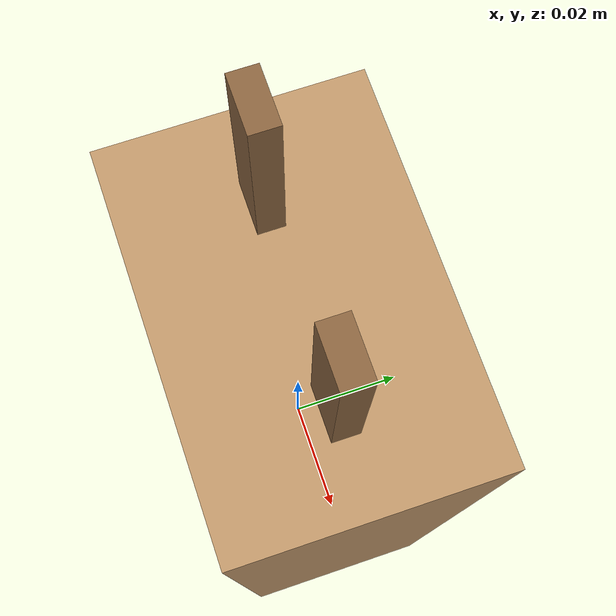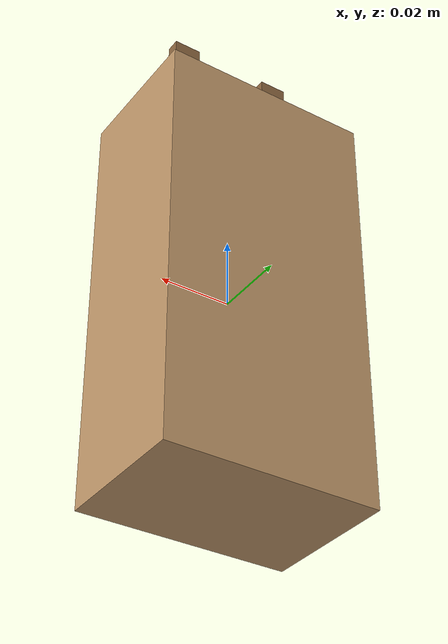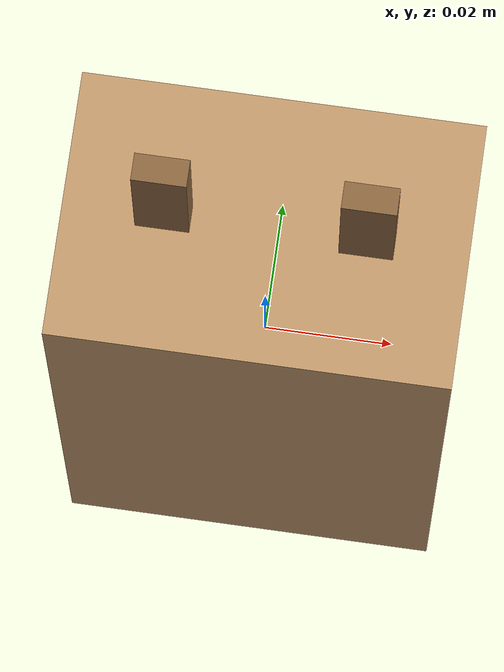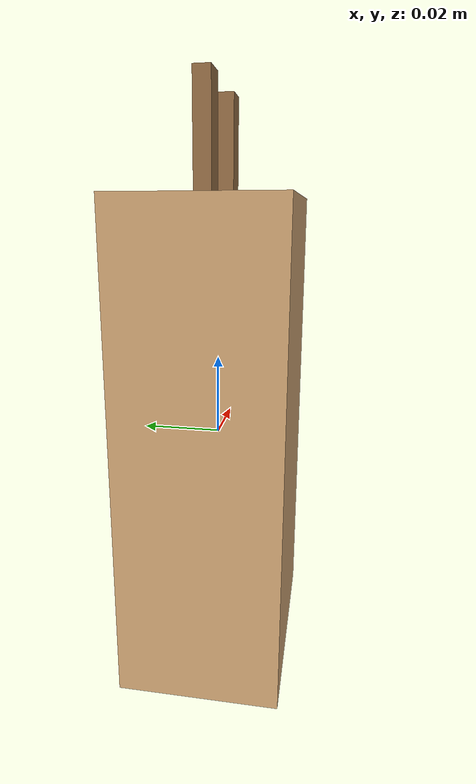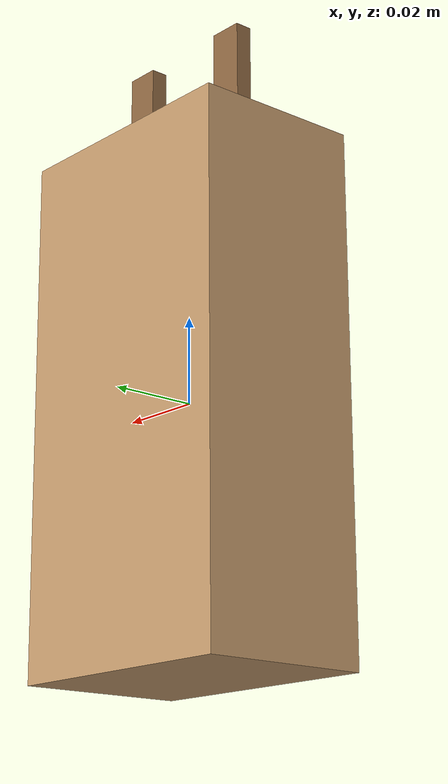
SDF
<?xml version="1.0" ?>
<sdf version="1.6">
  <model name="paper_bag">
    <static>false</static>
    <link name="bag_link">
      <inertial>
        <mass>0.05</mass>
        <inertia>
          <ixx>0.00004</ixx><ixy>0</ixy><ixz>0</ixz>
          <iyy>0.00006</iyy><iyz>0</iyz>
          <izz>0.00003</izz>
        </inertia>
      </inertial>
      <collision name="collision">
        <geometry>
          <!-- Thinner so fingers can wrap around it: 6cm wide, 4cm deep, 12cm tall -->
          <box><size>0.06 0.04 0.12</size></box>
        </geometry>
        <surface>
          <friction>
            <ode>
              <mu>2.0</mu>
              <mu2>2.0</mu2>
            </ode>
          </friction>
          <contact>
            <ode>
              <kp>50000.0</kp>
              <kd>500.0</kd>
              <min_depth>0.001</min_depth>
            </ode>
          </contact>
        </surface>
      </collision>
      <visual name="body">
        <geometry>
          <box><size>0.06 0.04 0.12</size></box>
        </geometry>
        <material>
          <ambient>0.76 0.60 0.42 1</ambient>
          <diffuse>0.76 0.60 0.42 1</diffuse>
          <specular>0.05 0.05 0.05 1</specular>
        </material>
      </visual>
      <visual name="handle_left">
        <pose>-0.015 0 0.07 0 0 0</pose>
        <geometry>
          <box><size>0.008 0.004 0.03</size></box>
        </geometry>
        <material>
          <ambient>0.55 0.40 0.25 1</ambient>
          <diffuse>0.55 0.40 0.25 1</diffuse>
        </material>
      </visual>
      <visual name="handle_right">
        <pose>0.015 0 0.07 0 0 0</pose>
        <geometry>
          <box><size>0.008 0.004 0.03</size></box>
        </geometry>
        <material>
          <ambient>0.55 0.40 0.25 1</ambient>
          <diffuse>0.55 0.40 0.25 1</diffuse>
        </material>
      </visual>
    </link>
  </model>
</sdf>
